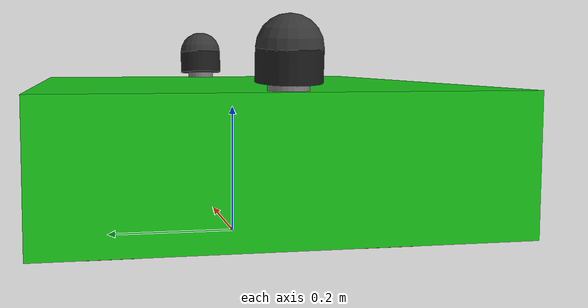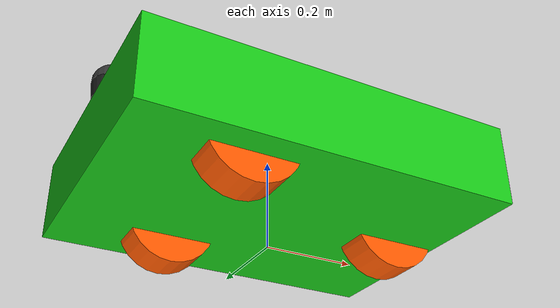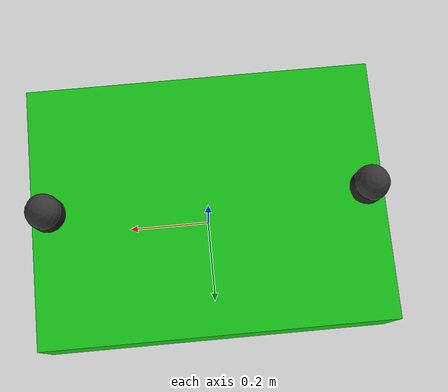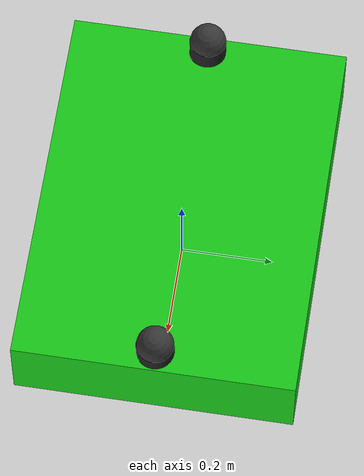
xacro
<?xml version="1.0"?>
<robot xmlns:xacro="http://www.ros.org/wiki/xacro" name="three_wheel_agv">

  <!-- ==================== Base Footprint ==================== -->
  <link name="base_footprint">
  </link>

  <joint name="base_footprint_joint" type="fixed">
    <parent link="base_footprint" />
    <child link="base_link" />
    <origin xyz="0 0 0.15" rpy="0 0 0" />
  </joint>

  <!-- ==================== Base Link ==================== -->
  <link name="base_link">
    <inertial>
      <origin xyz="0 0 0" rpy="0 0 0" />
      <mass value="60.0" />
      <!-- 惯量按箱体 0.8 x 0.6 x 0.18 公式计算（Ixx=m/12*(y²+z²) 等） -->
      <inertia ixx="1.96" ixy="0.0" ixz="0.0" iyy="3.36" iyz="0.0" izz="5.0" />
    </inertial>
    <visual>
      <origin xyz="0 0 0" rpy="0 0 0" />
      <geometry>
        <box size="0.8 0.6 0.18" />
      </geometry>
      <material name="green">
        <color rgba="0.1 0.8 0.1 1.0" />
      </material>
    </visual>
    <collision>
      <origin xyz="0 0 0" rpy="0 0 0" />
      <geometry>
        <box size="0.8 0.6 0.18" />
      </geometry>
    </collision>
    <!-- 雷达安装垫柱（高1cm：底盘顶面 z=0.09 → 雷达座 z=0.10），位置随雷达外移至前后边缘 -->
    <visual>
      <origin xyz="0.36 0 0.095" rpy="0 0 0" />
      <geometry>
        <cylinder radius="0.025" length="0.01" />
      </geometry>
      <material name="grey" />
    </visual>
    <visual>
      <origin xyz="-0.36 0 0.095" rpy="0 0 0" />
      <geometry>
        <cylinder radius="0.025" length="0.01" />
      </geometry>
      <material name="grey" />
    </visual>
  </link>

  <!-- ==================== IMU ==================== -->
  <link name="imu_link">
    <inertial>
      <origin xyz="0 0 0" rpy="0 0 0" />
      <mass value="0.01" />
      <inertia ixx="0.0001" ixy="0.0" ixz="0.0" iyy="0.0001" iyz="0.0" izz="0.0001" />
    </inertial>
    <visual>
      <origin xyz="0 0 0" rpy="0 0 0" />
      <geometry>
        <box size="0.04 0.04 0.02" />
      </geometry>
      <material name="purple">
        <color rgba="0.8 0.0 0.8 1.0" />
      </material>
    </visual>
  </link>

  <joint name="imu_joint" type="fixed">
    <parent link="base_link" />
    <child link="imu_link" />
    <origin xyz="0 0 0" rpy="0 0 0" />
  </joint>

  <!-- ==================== 3D Lidar 双雷达（前+后，Mid-360 仿真） ==================== -->
  <!-- 雷达经1cm垫柱安装在底盘顶面（雷达座 z=0.10，世界高度0.25），并外移至前后边缘：
       底座半径0.04，中心取±0.36 使外沿与底盘边缘(±0.4)对齐，
       前后向俯角射线出射即越过底盘边缘；侧向>约2°的俯角射线会打在自家底盘上，
       机身两侧近处存在小范围盲区 -->
  <!-- 前雷达：底盘前边缘，前倾5°(rpy.pitch=+0.0873，顶部向前) -->
  <link name="front_lidar_link">
    <inertial>
      <origin xyz="0 0 0" rpy="0 0 0" />
      <mass value="0.2" />
      <inertia ixx="0.001" ixy="0.0" ixz="0.0" iyy="0.001" iyz="0.0" izz="0.001" />
    </inertial>
    <!-- 半球穹顶雷达外形：底座圆柱 + 球体(下半埋入底座，只露上半球)，仿 Mid-360 -->
    <visual>
      <origin xyz="0 0 0.02" rpy="0 0 0" />
      <geometry>
        <cylinder radius="0.04" length="0.04" />
      </geometry>
      <material name="lidar_base">
        <color rgba="0.12 0.12 0.12 1.0" />
      </material>
    </visual>
    <visual>
      <origin xyz="0 0 0.04" rpy="0 0 0" />
      <geometry>
        <sphere radius="0.04" />
      </geometry>
      <material name="lidar_dome">
        <color rgba="0.22 0.22 0.22 1.0" />
      </material>
    </visual>
  </link>

  <joint name="front_lidar_joint" type="fixed">
    <parent link="base_link" />
    <child link="front_lidar_link" />
    <origin xyz="0.36 0 0.10" rpy="0 0.0873 0" />
  </joint>

  <!-- 后雷达：底盘后边缘，朝后(yaw=π)+后倾5° → 覆盖机器人正后方 -->
  <link name="rear_lidar_link">
    <inertial>
      <origin xyz="0 0 0" rpy="0 0 0" />
      <mass value="0.2" />
      <inertia ixx="0.001" ixy="0.0" ixz="0.0" iyy="0.001" iyz="0.0" izz="0.001" />
    </inertial>
    <!-- 半球穹顶雷达外形：底座圆柱 + 球体(下半埋入底座，只露上半球)，仿 Mid-360 -->
    <visual>
      <origin xyz="0 0 0.02" rpy="0 0 0" />
      <geometry>
        <cylinder radius="0.04" length="0.04" />
      </geometry>
      <material name="lidar_base">
        <color rgba="0.12 0.12 0.12 1.0" />
      </material>
    </visual>
    <visual>
      <origin xyz="0 0 0.04" rpy="0 0 0" />
      <geometry>
        <sphere radius="0.04" />
      </geometry>
      <material name="lidar_dome">
        <color rgba="0.22 0.22 0.22 1.0" />
      </material>
    </visual>
  </link>

  <joint name="rear_lidar_joint" type="fixed">
    <parent link="base_link" />
    <child link="rear_lidar_link" />
    <origin xyz="-0.36 0 0.10" rpy="0 0.0873 3.1416" />
  </joint>

  <!-- ==================== Front Steering Module ==================== -->
  <link name="wheel_front_steering_link">
    <inertial>
      <origin xyz="0 0 0" rpy="0 0 0" />
      <mass value="1.5" />
      <inertia ixx="0.0045" ixy="0.0" ixz="0.0" iyy="0.0045" iyz="0.0" izz="0.0075" />
    </inertial>
    <visual>
      <origin xyz="0 0 0" rpy="0 0 0" />
      <geometry>
        <cylinder radius="0.03" length="0.06" />
      </geometry>
      <material name="grey">
        <color rgba="0.5 0.5 0.5 1.0" />
      </material>
    </visual>
  </link>

  <joint name="wheel_front_steering_joint" type="revolute">
    <parent link="base_link" />
    <child link="wheel_front_steering_link" />
    <origin xyz="0.3 0.0 -0.05" rpy="0 0 0" />
    <axis xyz="0 0 1" />
    <limit lower="-1.5708" upper="1.5708" effort="10.0" velocity="5.0" />
  </joint>

  <link name="wheel_front_wheel_link">
    <inertial>
      <origin xyz="0 0 0" rpy="0 0 0" />
      <mass value="3.0" />
      <inertia ixx="0.0091" ixy="0.0" ixz="0.0" iyy="0.0091" iyz="0.0" izz="0.015" />
    </inertial>
    <visual>
      <origin xyz="0 0 0" rpy="1.5708 0 0" />
      <geometry>
        <cylinder radius="0.1" length="0.08" />
      </geometry>
      <material name="orange_wheel">
        <color rgba="1.0 0.35 0.0 1.0" />
      </material>
    </visual>
    <collision>
      <origin xyz="0 0 0" rpy="1.5708 0 0" />
      <geometry>
        <cylinder radius="0.1" length="0.08" />
      </geometry>
    </collision>
  </link>

  <joint name="wheel_front_wheel_joint" type="revolute">
    <parent link="wheel_front_steering_link" />
    <child link="wheel_front_wheel_link" />
    <origin xyz="0.0 0.0 0.0" rpy="0 0 0" />
    <axis xyz="0 1 0" />
    <limit lower="-1e9" upper="1e9" effort="10.0" velocity="10.0" />
  </joint>

  <!-- ==================== Left Steering Module ==================== -->
  <link name="wheel_left_steering_link">
    <inertial>
      <origin xyz="0 0 0" rpy="0 0 0" />
      <mass value="1.5" />
      <inertia ixx="0.0045" ixy="0.0" ixz="0.0" iyy="0.0045" iyz="0.0" izz="0.0075" />
    </inertial>
    <visual>
      <origin xyz="0 0 0" rpy="0 0 0" />
      <geometry>
        <cylinder radius="0.03" length="0.06" />
      </geometry>
      <material name="grey" />
    </visual>
  </link>

  <joint name="wheel_left_steering_joint" type="revolute">
    <parent link="base_link" />
    <child link="wheel_left_steering_link" />
    <origin xyz="-0.15 0.20 -0.05" rpy="0 0 0" />
    <axis xyz="0 0 1" />
    <limit lower="-1.5708" upper="1.5708" effort="10.0" velocity="5.0" />
  </joint>

  <link name="wheel_left_wheel_link">
    <inertial>
      <origin xyz="0 0 0" rpy="0 0 0" />
      <mass value="3.0" />
      <inertia ixx="0.0091" ixy="0.0" ixz="0.0" iyy="0.0091" iyz="0.0" izz="0.015" />
    </inertial>
    <visual>
      <origin xyz="0 0 0" rpy="1.5708 0 0" />
      <geometry>
        <cylinder radius="0.1" length="0.08" />
      </geometry>
      <material name="orange_wheel">
        <color rgba="1.0 0.35 0.0 1.0" />
      </material>
    </visual>
    <collision>
      <origin xyz="0 0 0" rpy="1.5708 0 0" />
      <geometry>
        <cylinder radius="0.1" length="0.08" />
      </geometry>
    </collision>
  </link>

  <joint name="wheel_left_wheel_joint" type="revolute">
    <parent link="wheel_left_steering_link" />
    <child link="wheel_left_wheel_link" />
    <origin xyz="0.0 0.0 0.0" rpy="0 0 0" />
    <axis xyz="0 1 0" />
    <limit lower="-1e9" upper="1e9" effort="10.0" velocity="10.0" />
  </joint>

  <!-- ==================== Right Steering Module ==================== -->
  <link name="wheel_right_steering_link">
    <inertial>
      <origin xyz="0 0 0" rpy="0 0 0" />
      <mass value="1.5" />
      <inertia ixx="0.0045" ixy="0.0" ixz="0.0" iyy="0.0045" iyz="0.0" izz="0.0075" />
    </inertial>
    <visual>
      <origin xyz="0 0 0" rpy="0 0 0" />
      <geometry>
        <cylinder radius="0.03" length="0.06" />
      </geometry>
      <material name="grey" />
    </visual>
  </link>

  <joint name="wheel_right_steering_joint" type="revolute">
    <parent link="base_link" />
    <child link="wheel_right_steering_link" />
    <origin xyz="-0.15 -0.20 -0.05" rpy="0 0 0" />
    <axis xyz="0 0 1" />
    <limit lower="-1.5708" upper="1.5708" effort="10.0" velocity="5.0" />
  </joint>

  <link name="wheel_right_wheel_link">
    <inertial>
      <origin xyz="0 0 0" rpy="0 0 0" />
      <mass value="3.0" />
      <inertia ixx="0.0091" ixy="0.0" ixz="0.0" iyy="0.0091" iyz="0.0" izz="0.015" />
    </inertial>
    <visual>
      <origin xyz="0 0 0" rpy="1.5708 0 0" />
      <geometry>
        <cylinder radius="0.1" length="0.08" />
      </geometry>
      <material name="orange_wheel">
        <color rgba="1.0 0.35 0.0 1.0" />
      </material>
    </visual>
    <collision>
      <origin xyz="0 0 0" rpy="1.5708 0 0" />
      <geometry>
        <cylinder radius="0.1" length="0.08" />
      </geometry>
    </collision>
  </link>

  <joint name="wheel_right_wheel_joint" type="revolute">
    <parent link="wheel_right_steering_link" />
    <child link="wheel_right_wheel_link" />
    <origin xyz="0.0 0.0 0.0" rpy="0 0 0" />
    <axis xyz="0 1 0" />
    <limit lower="-1e9" upper="1e9" effort="10.0" velocity="10.0" />
  </joint>

  <!-- ==================== ros2_control ==================== -->
  <ros2_control name="IgnitionSystem" type="system">
    <hardware>
      <plugin>ign_ros2_control/IgnitionSystem</plugin>
    </hardware>
    <joint name="wheel_front_steering_joint">
      <command_interface name="position" />
      <state_interface name="position" />
      <state_interface name="velocity" />
    </joint>
    <joint name="wheel_left_steering_joint">
      <command_interface name="position" />
      <state_interface name="position" />
      <state_interface name="velocity" />
    </joint>
    <joint name="wheel_right_steering_joint">
      <command_interface name="position" />
      <state_interface name="position" />
      <state_interface name="velocity" />
    </joint>
    <joint name="wheel_front_wheel_joint">
      <command_interface name="velocity" />
      <state_interface name="position" />
      <state_interface name="velocity" />
    </joint>
    <joint name="wheel_left_wheel_joint">
      <command_interface name="velocity" />
      <state_interface name="position" />
      <state_interface name="velocity" />
    </joint>
    <joint name="wheel_right_wheel_joint">
      <command_interface name="velocity" />
      <state_interface name="position" />
      <state_interface name="velocity" />
    </joint>
  </ros2_control>

  <!-- ==================== Gazebo Plugins ==================== -->
  <gazebo>
    <plugin filename="ign_ros2_control-system" name="ign_ros2_control::IgnitionROS2ControlPlugin">
      <parameters>$(find simulated_chassis)/param/three_wheel_controllers.yaml</parameters>
      <robot_param>robot_description</robot_param>
      <robot_param_node>robot_state_publisher</robot_param_node>
    </plugin>
    <plugin filename="ignition-gazebo-sensors-system" name="ignition::gazebo::systems::Sensors">
    </plugin>
    <plugin name="ignition::gazebo::systems::Imu" filename="ignition-gazebo-imu-system"></plugin>
  </gazebo>

  <!-- ==================== IMU Sensor ==================== -->
  <gazebo reference="imu_link">
    <sensor name="imu_sensor" type="imu">
      <always_on>true</always_on>
      <update_rate>100</update_rate>
      <visualize>false</visualize>
      <topic>/imu</topic>
      <ignition_frame_id>imu_link</ignition_frame_id>

      <imu>
        <frame_id>imu_link</frame_id>

        <!-- 角速度：白噪声密度约 0.01°/s/√Hz，
           100Hz 下每采样 σ≈0.001 rad/s (0.057°/s)；
           上电零偏 σ≈0.002°/s (3.5e-5 rad/s)；
           零偏随机游走 10°/hr，相关时间 1000s -->
        <angular_velocity>
          <x>
            <noise type="gaussian">
              <mean>0.0</mean>
              <stddev>0.001</stddev>
              <bias_mean>0.0</bias_mean>
              <bias_stddev>0.00005</bias_stddev>
              <dynamic_bias_stddev>0.00005</dynamic_bias_stddev>
              <dynamic_bias_correlation_time>1000.0</dynamic_bias_correlation_time>
            </noise>
          </x>
          <y>
            <noise type="gaussian">
              <mean>0.0</mean>
              <stddev>0.001</stddev>
              <bias_mean>0.0</bias_mean>
              <bias_stddev>0.00005</bias_stddev>
              <dynamic_bias_stddev>0.00005</dynamic_bias_stddev>
              <dynamic_bias_correlation_time>1000.0</dynamic_bias_correlation_time>
            </noise>
          </y>
          <z>
            <noise type="gaussian">
              <mean>0.0</mean>
              <stddev>0.001</stddev>
              <bias_mean>0.0</bias_mean>
              <bias_stddev>0.00005</bias_stddev>
              <dynamic_bias_stddev>0.00005</dynamic_bias_stddev>
              <dynamic_bias_correlation_time>1000.0</dynamic_bias_correlation_time>
            </noise>
          </z>
        </angular_velocity>

        <!-- 线加速度：白噪声密度约 60µg/√Hz，
           100Hz 下每采样 σ≈0.0006 m/s²；
           上电零偏 σ≈0.00015 m/s² (15µg)；
           零偏随机游走 0.05mg，相关时间 1000s -->
        <linear_acceleration>
          <x>
            <noise type="gaussian">
              <mean>0.0</mean>
              <stddev>0.0006</stddev>
              <bias_mean>0.0</bias_mean>
              <bias_stddev>0.00015</bias_stddev>
              <dynamic_bias_stddev>0.0002</dynamic_bias_stddev>
              <dynamic_bias_correlation_time>1000.0</dynamic_bias_correlation_time>
            </noise>
          </x>
          <y>
            <noise type="gaussian">
              <mean>0.0</mean>
              <stddev>0.0006</stddev>
              <bias_mean>0.0</bias_mean>
              <bias_stddev>0.00015</bias_stddev>
              <dynamic_bias_stddev>0.0002</dynamic_bias_stddev>
              <dynamic_bias_correlation_time>1000.0</dynamic_bias_correlation_time>
            </noise>
          </y>
          <z>
            <noise type="gaussian">
              <mean>0.0</mean>
              <stddev>0.0006</stddev>
              <bias_mean>0.0</bias_mean>
              <bias_stddev>0.00015</bias_stddev>
              <dynamic_bias_stddev>0.0002</dynamic_bias_stddev>
              <dynamic_bias_correlation_time>1000.0</dynamic_bias_correlation_time>
            </noise>
          </z>
        </linear_acceleration>
      </imu>
    </sensor>
  </gazebo>

  <!-- ==================== 双 3D Lidar Sensor (Mid-360 仿真) ==================== -->

  <!-- 前雷达 -->
  <gazebo reference="front_lidar_link">
    <sensor name="front_lidar_sensor" type="gpu_lidar">
      <always_on>true</always_on>
      <update_rate>15</update_rate>
      <visualize>true</visualize>
      <topic>/front_lidar/point_cloud</topic>
      <ignition_frame_id>front_lidar_link</ignition_frame_id>

      <lidar>
        <frame_id>front_lidar_link</frame_id>
        <scan>
          <horizontal>
            <samples>270</samples>
            <resolution>1</resolution>
            <min_angle>-2.3562</min_angle>
            <max_angle>2.3562</max_angle>
          </horizontal>
          <vertical>
            <samples>32</samples>
            <min_angle>-0.1745</min_angle>
            <max_angle>0.7854</max_angle>
          </vertical>
        </scan>
        <range>
          <min>0.8</min>
          <max>30.0</max>
          <resolution>0.01</resolution>
        </range>
        <noise>
          <type>gaussian</type>
          <mean>0.0</mean>
          <bias_mean>0.0</bias_mean>
          <bias_stddev>0.005</bias_stddev>
          <precision>0.01</precision>
          <stddev>0.010</stddev>
        </noise>
      </lidar>
    </sensor>
  </gazebo>

  <!-- 后雷达 -->
  <gazebo reference="rear_lidar_link">
    <sensor name="rear_lidar_sensor" type="gpu_lidar">
      <always_on>true</always_on>
      <update_rate>15</update_rate>
      <visualize>true</visualize>
      <topic>/rear_lidar/point_cloud</topic>
      <ignition_frame_id>rear_lidar_link</ignition_frame_id>

      <lidar>
        <frame_id>rear_lidar_link</frame_id>
        <scan>
          <horizontal>
            <samples>270</samples>
            <resolution>1</resolution>
            <min_angle>-2.3562</min_angle>
            <max_angle>2.3562</max_angle>
          </horizontal>
          <vertical>
            <samples>32</samples>
            <min_angle>-0.1745</min_angle>
            <max_angle>0.7854</max_angle>
          </vertical>
        </scan>
        <range>
          <min>0.8</min>
          <max>30.0</max>
          <resolution>0.01</resolution>
        </range>
        <noise>
          <type>gaussian</type>
          <mean>0.0</mean>
          <bias_mean>0.0</bias_mean>
          <bias_stddev>0.005</bias_stddev>
          <precision>0.01</precision>
          <stddev>0.010</stddev>
        </noise>
      </lidar>
    </sensor>
  </gazebo>

  <!-- 在 robot 标签的末尾，为每个车轮的 link 指定摩擦参数 -->
  <gazebo reference="wheel_front_wheel_link">
    <surface>
      <friction>
        <ode>
          <mu>0.8</mu>
          <mu2>0.6</mu2>
        </ode>
      </friction>
    </surface>
  </gazebo>

  <gazebo reference="wheel_left_wheel_link">
    <surface>
      <friction>
        <ode>
          <mu>0.8</mu>
          <mu2>0.6</mu2>
        </ode>
      </friction>
    </surface>
  </gazebo>

  <gazebo reference="wheel_right_wheel_link">
    <surface>
      <friction>
        <ode>
          <mu>0.8</mu>
          <mu2>0.6</mu2>
        </ode>
      </friction>
    </surface>
  </gazebo>

</robot>
